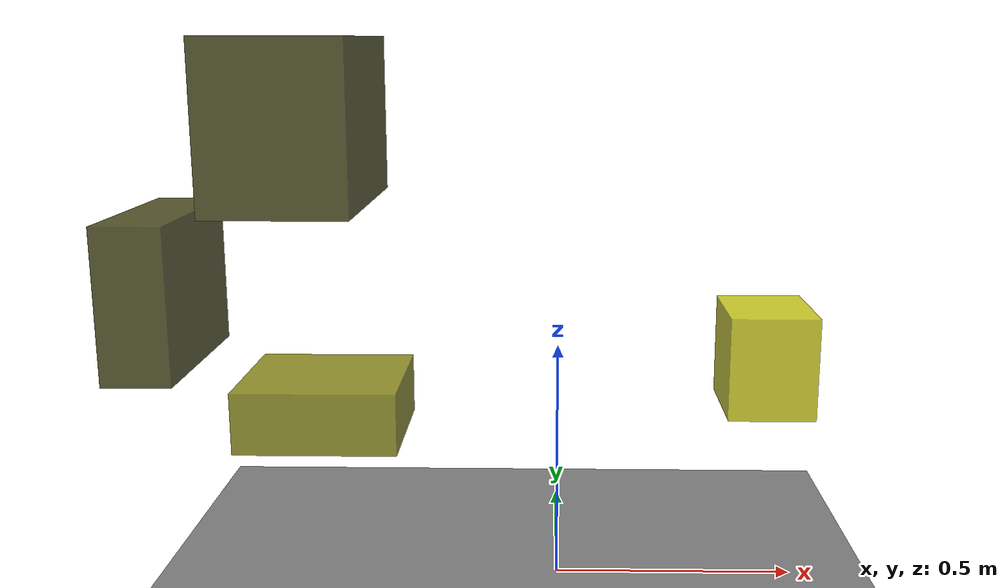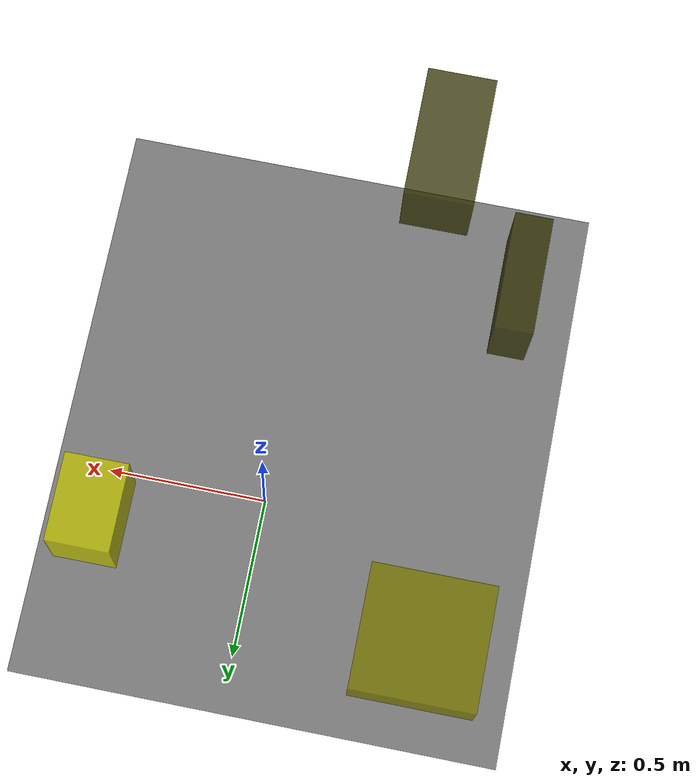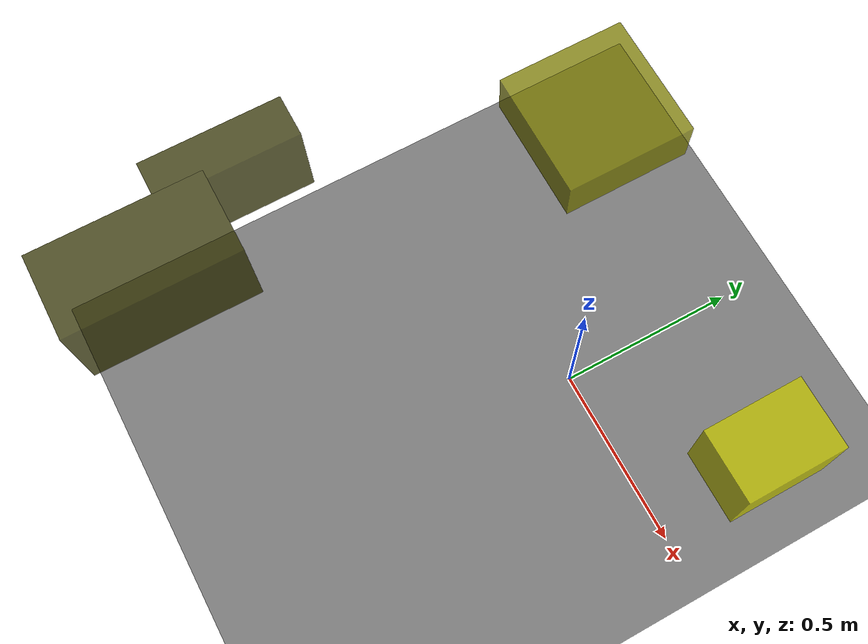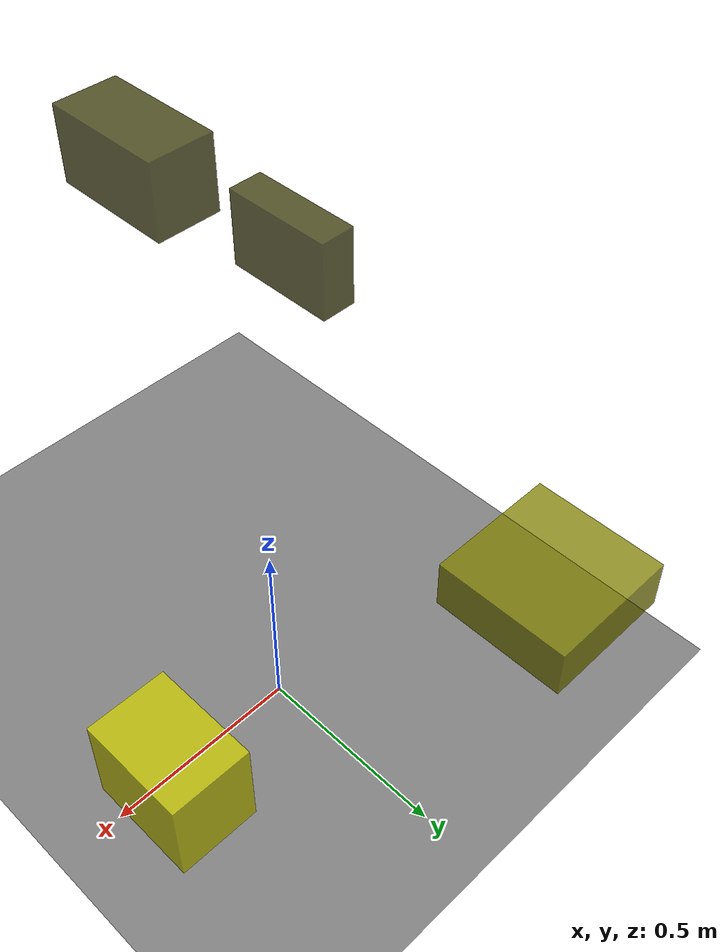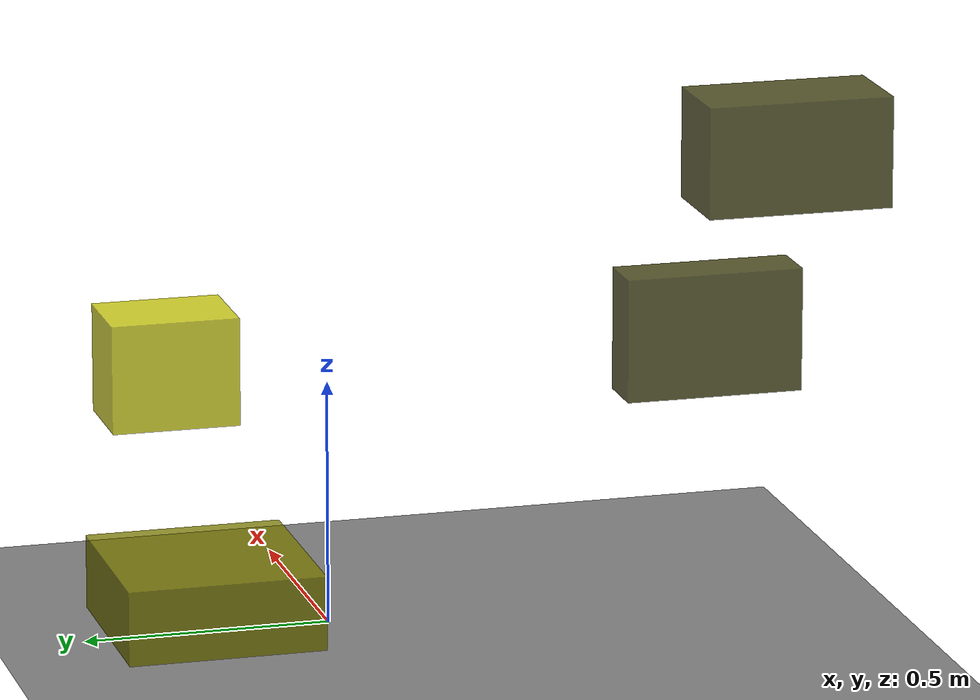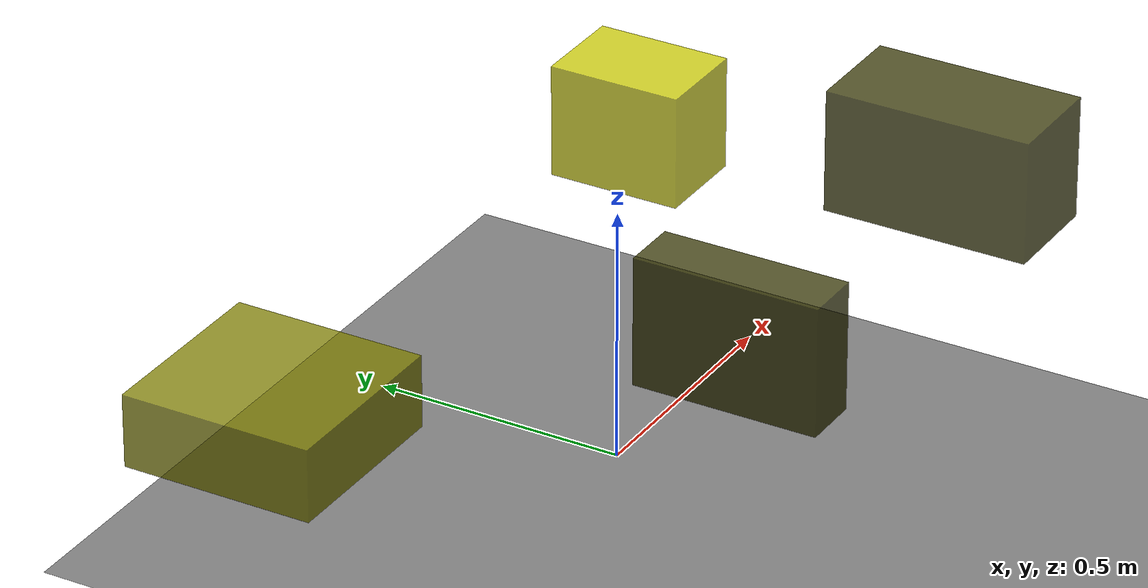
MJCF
<?xml version="1.0"?>
<mujoco model="obstacle_scene">
  <compiler angle="radian" coordinate="local"/>
  <option timestep="0.001" gravity="0 0 -9.81"/>

  <asset>
    <material name="obstacle_mat" rgba="0.8 0.8 0.0 0.8"/>
    <material name="ground_mat" rgba="0.5 0.5 0.5 1"/>
  </asset>

  <worldbody>
    <!-- Ground plane -->
    <geom name="ground" type="plane" size="3 3 0.1" material="ground_mat"/>

    <!-- Obstacles -->
    <body name="obstacle_0" pos="-0.630152 -0.591548 0.735173">
      <geom name="obs_0" type="box" size="0.053655 0.173065 0.120604" rgba="0.2 0.2 0.0 0.8"/>
    </body>
    <body name="obstacle_1" pos="-0.556400 0.381204 0.265099">
      <geom name="obs_1" type="box" size="0.189961 0.190986 0.072847" rgba="0.5 0.5 0.0 0.8"/>
    </body>
    <body name="obstacle_2" pos="0.466996 0.222007 0.425572">
      <geom name="obs_2" type="box" size="0.095436 0.132757 0.113399" rgba="0.8 0.8 0.0 0.8"/>
    </body>
    <body name="obstacle_3" pos="-0.357114 -0.836145 1.011480">
      <geom name="obs_3" type="box" size="0.095228 0.185612 0.110895" rgba="0.2 0.2 0.0 0.8"/>
    </body>
  </worldbody>
</mujoco>
